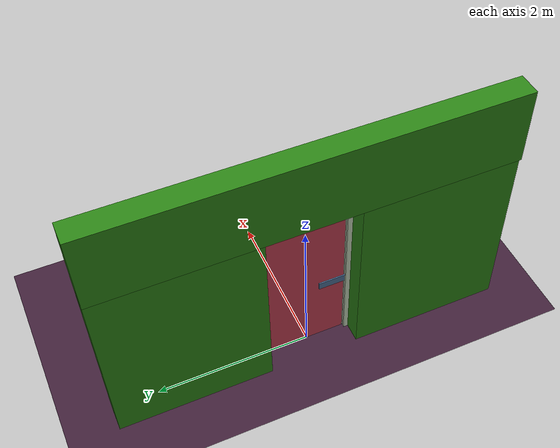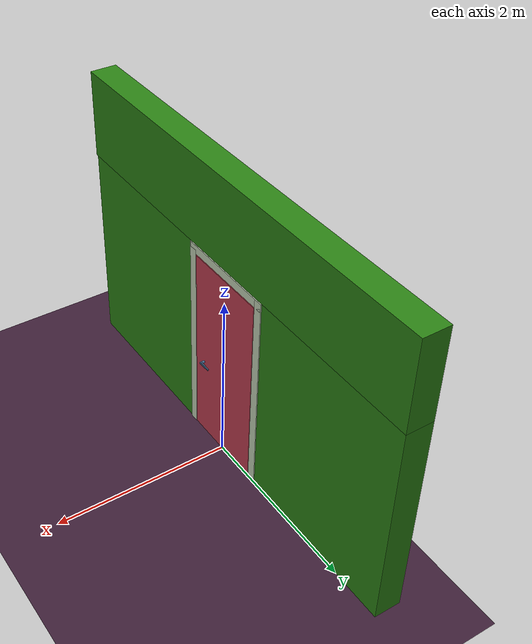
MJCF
<?xml version="1.0" encoding="utf-8"?>
<mujoco model="door_knob">
	<compiler angle="radian"/>
	<visual>
		<map fogend="5" fogstart="3" force="0.1" zfar="10" znear="0.01"/>
		<quality shadowsize="2048"/>
		<global offheight="256" offwidth="256"/>
	</visual>
	<asset>
		<mesh file="../../door/leverknobs/1552166919/body_1.stl" name="door_knob_1" scale="0.0015 0.0015 0.0015"/>
		<mesh file="../../door/leverknobs/1552166919/body_2.stl" name="door_knob_2" scale="0.0015 0.0015 0.0015"/>
		<mesh file="../../door/leverknobs/1552166919/body_3.stl" name="door_knob_3" scale="0.0015 0.0015 0.0015"/>
		<mesh file="../../door/leverknobs/1552166919/body_4.stl" name="door_knob_4" scale="0.0015 0.0015 0.0015"/>
		<mesh file="../../door/leverknobs/1552166919/body_5.stl" name="door_knob_5" scale="0.0015 0.0015 0.0015"/>
		<texture builtin="flat" height="32" name="wall_geom" type="2d" width="32"/>
		<texture builtin="flat" height="32" name="frame_geom" type="2d" width="32"/>
		<texture builtin="flat" height="32" name="door_geom" type="2d" width="32"/>
		<texture builtin="flat" height="32" name="knob_geom" type="2d" width="32"/>
		<texture builtin="gradient" height="128" rgb1="0.4 0.6 0.8" rgb2="0 0 0" type="skybox" width="128"/>
		<texture builtin="gradient" height="512" name="texplane" rgb1="0.16 0.03 0.05" rgb2="0.33 0.22 0.39" type="2d" width="512"/>
		<material name="Paint" shininess="0.2" specular="0.34" texture="wall_geom"/>
		<material name="Wood" shininess="0.17" specular="0.18" texture="frame_geom"/>
		<material name="Carpet" shininess="0.01" specular="0.03" texture="door_geom"/>
		<material name="Metal" shininess="0.91" specular="0.92" texture="knob_geom"/>
		<material name="Floor" texture="texplane"/>
	</asset>
	<contact>
		<pair geom1="knob_latch" geom2="door_frame_0" solref="0.01 1"/>
		<pair geom1="knob_latch" geom2="door_frame_1" solref="0.01 1"/>
		<pair geom1="knob_latch" geom2="door_frame_2" solref="0.01 1"/>
		<pair geom1="knob_latch" geom2="door_frame_3" solref="0.01 1"/>
	</contact>
	<default>
		<joint armature="1" damping="1" limited="true"/>
		<default class="wall">
			<geom rgba="0.17 0.51 0.08 1.0" type="mesh"/>
		</default>
		<default class="frame">
			<geom rgba="0.76 0.82 0.71 1.0" type="mesh"/>
		</default>
		<default class="door">
			<geom rgba="0.74 0.24 0.31 1.0" type="mesh"/>
		</default>
		<default class="door_knob">
			<geom condim="4" rgba="0.29 0.43 0.58 1.0" type="mesh"/>
		</default>
		<default class="robot">
			<joint damping="0.09"/>
		</default>
	</default>
	<worldbody>
		<light diffuse="1.0 0.9 1.0" dir="-0.12 0.13 -0.28" directional="true" pos="4.83 -3.68 3.1"/>
		<light diffuse="1.0 1.0 1.0" dir="0.37 -0.14 -0.43" directional="true" pos="0.25 2.69 5.15"/>
		<geom material="Floor" name="floor" pos="0 0 -0.05" size="15.0 15.0 0.05" type="plane"/>
		<camera fovy="60" mode="fixed" name="camera1" pos="0.99 0.5 1.0" euler="0.0 1.57 1.57"/>
		<camera fovy="60" mode="fixed" name="camera2" pos="0.5 0.0 1.99" euler="0 0 0"/>
		<body childclass="wall" name="wall_link" pos="0.0 0.0 0.0">
			<inertial mass="100" pos="0 0 0" diaginertia="0.0001 0.0001 0.0001"/>
			<geom material="Wood" name="wall_0" pos="-0.15 -1.57 1.2005000000000001" size="0.15 1.0 1.2005000000000001" type="box" euler="0 0 0"/>
			<geom material="Wood" name="wall_1" pos="-0.15 1.6 1.2005000000000001" size="0.15 1.0 1.2005000000000001" type="box" euler="0 0 0"/>
			<geom material="Wood" name="wall_2" pos="-0.15 0 2.9010000000000002" size="0.15 2.6 0.5" type="box" euler="0 0 0"/>
			<body childclass="frame" name="frame_link" pos="0 -0.35 1">
				<inertial mass="500" pos="0 0 0" diaginertia="0.0001 0.0001 0.0001"/>
				<geom material="Wood" name="door_frame_0" pos="0 -0.21000000000000002 0.20050000000000012" size="0.0115 0.05 1.2005000000000001" type="box" euler="0 0 0"/>
				<geom material="Wood" name="door_frame_1" pos="0 0.91 0.20050000000000012" size="0.0115 0.05 1.2005000000000001" type="box" euler="0 0 0"/>
				<geom material="Wood" name="door_frame_2" pos="0 0.35 1.3510000000000002" size="0.0115 0.6 0.05" type="box" euler="0 0 0"/>
				<geom material="Wood" name="door_frame_3" pos="-0.042499999999999996 -0.21000000000000002 0.20050000000000012" size="0.0115 0.05 1.2005000000000001" type="box" euler="0 0 0"/>
				<geom material="Wood" name="door_frame_4" pos="-0.042499999999999996 0.91 0.20050000000000012" size="0.0115 0.05 1.2005000000000001" type="box" euler="0 0 0"/>
				<geom material="Wood" name="door_frame_5" pos="-0.042499999999999996 0.35 1.3510000000000002" size="0.0115 0.6 0.05" type="box" euler="0 0 0"/>
				<body childclass="door" name="door_link" pos="0 0 0">
					<joint armature="0.0001" axis="0 0 1" damping="1.0" frictionloss="0" limited="true" name="hinge0" pos="0 0.85 0" range="-0.0 1.57" stiffness="0.11" type="hinge"/>
					<geom material="Wood" name="door0" pos="0 0.35 0.15050000000000008" size="0.0115 0.5 1.138995" type="box" euler="0 0 0"/>
					<inertial mass="15.876900000000001" pos="0 0.35 0.15050000000000008" diaginertia="8.328229218075002 7.005854124750002 1.323774906675"/>
					<body childclass="door_knob" name="knob_link" pos="0 0 0">
						<inertial mass="1" pos="0 0 0" diaginertia="0.001 0.001 0.001"/>
						<joint armature="0" axis="0 1 0" damping="30000" frictionloss="0" limited="true" name="target0" range="-0.2 0.3" stiffness="0" type="slide"/>
						<joint armature="0" axis="0 0 1" damping="30000" frictionloss="0" limited="true" name="target1" range="-0.5 0.5" stiffness="0" type="slide"/>
						<joint armature="0.0001" axis="1 0 0" damping="1.17" frictionloss="0" limited="true" name="hinge1" pos="0 0 0" range="-1.378111111111111 1.378111111111111" stiffness="1.25" type="hinge"/>
						<body childclass="door_knob" name="leverknob_link" pos="0.0115 0 0">
							<geom friction="0.81 0.003 0.001" material="Wood" mesh="door_knob_1" name="door_knob_1" euler="-1.57 1.57 0"/>
							<geom friction="0.81 0.003 0.001" material="Wood" mesh="door_knob_2" name="door_knob_2" euler="-1.57 1.57 0"/>
							<geom friction="0.81 0.003 0.001" material="Wood" mesh="door_knob_3" name="door_knob_3" euler="-1.57 1.57 0"/>
							<geom friction="0.81 0.003 0.001" material="Wood" mesh="door_knob_4" name="door_knob_4" euler="-1.57 1.57 0"/>
							<geom friction="0.81 0.003 0.001" material="Wood" mesh="door_knob_5" name="door_knob_5" euler="-1.57 1.57 0"/>
							<geom material="Paint" name="knob_latch" pos="-0.03275 0 0" size="0.0075 0.18333333333333332 0.05" type="box" euler="0 0 0"/>
							<inertial mass="1" pos="-0.058050000000000004 0 0" diaginertia="0.003009259259259259 0.00022708333333333337 0.0028196759259259256"/>
						</body>
					</body>
				</body>
			</body>
		</body>
	</worldbody>
</mujoco>
